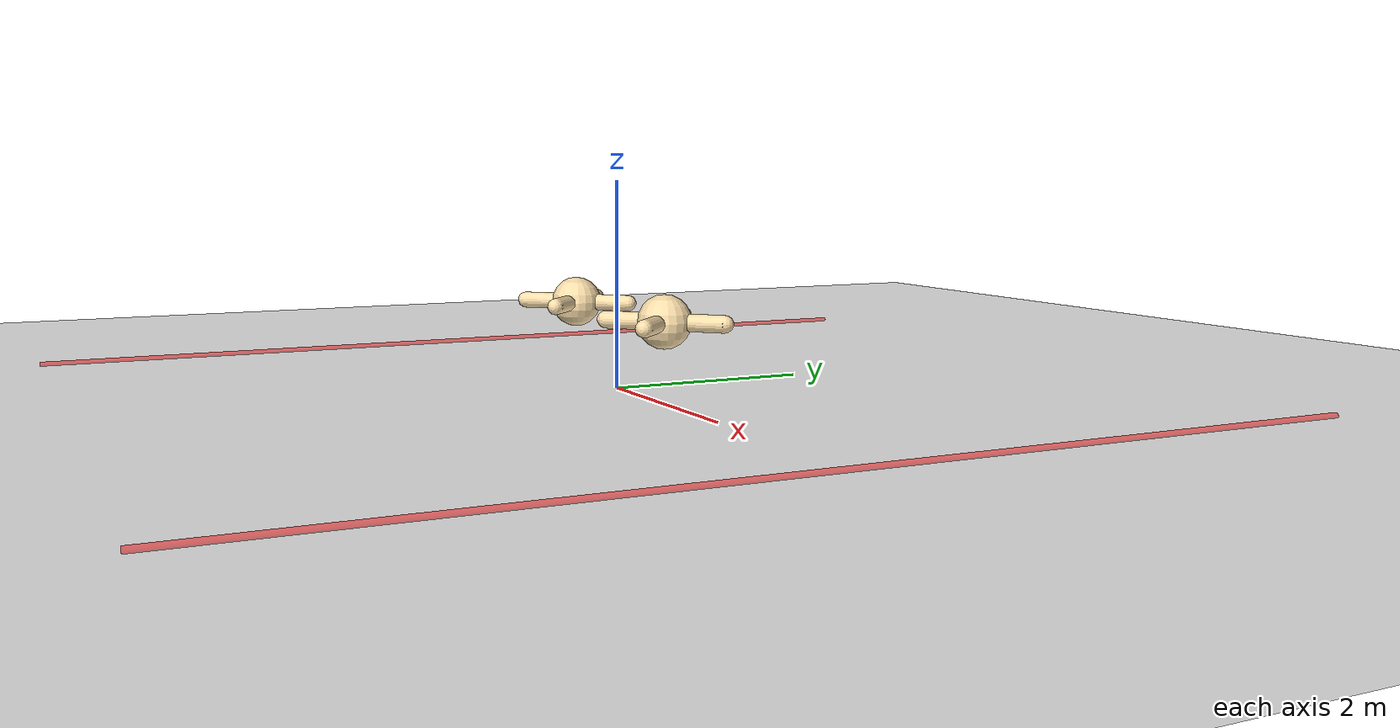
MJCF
<mujoco model="mutiagent_world">
  <compiler angle="degree" coordinate="local" inertiafromgeom="true" />

  <option integrator="RK4" timestep="0.003" solver="PGS" iterations="1000" />

  <default>
    <joint armature="1" damping="1" limited="true" />
  <default class="agent0"><joint armature="1" damping="1" limited="true" />
    <geom conaffinity="0" condim="3" density="5.0" friction="1 0.5 0.5" margin="0.01" rgba="0.98 0.87 0.67 1" material="geom" contype="1" />
  </default><default class="agent1"><joint armature="1" damping="1" limited="true" />
    <geom conaffinity="1" condim="3" density="5.0" friction="1 0.5 0.5" margin="0.01" rgba="0.98 0.87 0.67 1" material="geom" contype="0" />
  </default></default>

  <visual>
    <headlight ambient=".1 .1 .1" diffuse=".6 .6 .6" specular="0.3 0.3 0.3" />
    <map znear=".01" />
    <quality shadowsize="16384" />
  </visual>

  <asset>
    <texture builtin="gradient" height="100" rgb1=".4 .5 .6" rgb2="0 0 0" type="skybox" width="100" />
    <texture builtin="flat" height="1278" mark="cross" markrgb="0 0 0" name="texgeom" random="0.01" rgb1="0.8 0.6 0.4" rgb2="0.8 0.6 0.4" type="cube" width="127" />
    <texture builtin="checker" height="100" name="texplane" rgb1="0 0 0" rgb2="0.8 0.8 0.8" type="2d" width="100" />
    <texture name="MatPlane" type="2d" builtin="checker" rgb1=".5 .5 .5" rgb2=".5 .5 .5" width="300" height="300" mark="edge" markrgb="0.1 0.1 0.1" />
    <material name="MatPlane" texture="MatPlane" texrepeat="2 2" texuniform="true" reflectance=".2" />
    <material name="geom" texture="texgeom" texuniform="true" />
  </asset>

  <worldbody>
    <light cutoff="100" diffuse="1 1 1" dir="-0 0 -1.3" directional="true" exponent="1" pos="0 0 1.3" specular=".1 .1 .1" />
    <geom contype="1" conaffinity="1" friction="1 .1 .1" condim="3" material="MatPlane" name="floor" pos="0 0 0" rgba="1 1 1 1" size="20 20 0.125" type="plane" />
    <geom fromto="4 -5 0  4 +5 0" name="rightgoal" rgba="1 0 0 0.5" size=".03" type="cylinder" />
    <geom fromto="-4 -5 0  -4 +5 0" name="leftgoal" rgba="1 0 0 0.5" size=".03" type="cylinder" />
  <body name="agent0/0" pos="-1 0 0.75" euler="0 0 0">
      <geom pos="0 0 0" size="0.25" type="sphere" class="agent0" name="agent0/anon2355859551" />
      <joint armature="0" damping="0" limited="false" margin="0.01" name="agent0/root" pos="0 0 0" range="-30 30" type="free" />
      <body name="agent0/1" pos="0 0 0">
          <geom fromto="0.0 0.0 0.0 0.4 0.4 0.0" size="0.08" type="capsule" class="agent0" name="agent0/anon4052095259" />
          <joint axis="-1 1 0" name="agent0/1_joint" pos="0.0 0.0 0.0" range="-30 30" type="hinge" />
      </body>
      <body name="agent0/2" pos="0 0 0">
          <geom fromto="0.0 0.0 0.0 -0.4 0.4 0.0" size="0.08" type="capsule" class="agent0" name="agent0/anon4769990318" />
          <joint axis="-1 -1 0" name="agent0/2_joint" pos="0.0 0.0 0.0" range="-30 30" type="hinge" />
      </body>
      <body name="agent0/3" pos="0 0 0">
          <geom fromto="0.0 0.0 0.0 -0.4 -0.4 0.0" size="0.08" type="capsule" class="agent0" name="agent0/anon2075973529" />
          <joint axis="1 -1 0" name="agent0/3_joint" pos="0.0 0.0 0.0" range="-30 30" type="hinge" />
      </body>
      <body name="agent0/4" pos="0 0 0">
          <geom fromto="0.0 0.0 0.0 0.4 -0.4 0.0" size="0.08" type="capsule" class="agent0" name="agent0/anon3098734066" />
          <joint axis="1 1 0" name="agent0/4_joint" pos="0.0 0.0 0.0" range="-30 30" type="hinge" />
      </body>
    </body>

  <body name="agent1/0" pos="1 0 0.75" euler="0 0 180">
      <geom pos="0 0 0" size="0.25" type="sphere" class="agent1" name="agent1/anon4504857663" />
      <joint armature="0" damping="0" limited="false" margin="0.01" name="agent1/root" pos="0 0 0" range="-30 30" type="free" />
      <body name="agent1/1" pos="0 0 0">
          <geom fromto="0.0 0.0 0.0 0.4 0.4 0.0" size="0.08" type="capsule" class="agent1" name="agent1/anon5140083363" />
          <joint axis="-1 1 0" name="agent1/1_joint" pos="0.0 0.0 0.0" range="-30 30" type="hinge" />
      </body>
      <body name="agent1/2" pos="0 0 0">
          <geom fromto="0.0 0.0 0.0 -0.4 0.4 0.0" size="0.08" type="capsule" class="agent1" name="agent1/anon5031723857" />
          <joint axis="-1 -1 0" name="agent1/2_joint" pos="0.0 0.0 0.0" range="-30 30" type="hinge" />
      </body>
      <body name="agent1/3" pos="0 0 0">
          <geom fromto="0.0 0.0 0.0 -0.4 -0.4 0.0" size="0.08" type="capsule" class="agent1" name="agent1/anon1012869891" />
          <joint axis="1 -1 0" name="agent1/3_joint" pos="0.0 0.0 0.0" range="-30 30" type="hinge" />
      </body>
      <body name="agent1/4" pos="0 0 0">
          <geom fromto="0.0 0.0 0.0 0.4 -0.4 0.0" size="0.08" type="capsule" class="agent1" name="agent1/anon1612058358" />
          <joint axis="1 1 0" name="agent1/4_joint" pos="0.0 0.0 0.0" range="-30 30" type="hinge" />
      </body>
    </body>

  </worldbody>
<actuator>
    <motor ctrllimited="true" ctrlrange="-1.0 1.0" joint="agent0/1_joint" gear="150" name="agent0/1_joint" class="agent0" />
    <motor ctrllimited="true" ctrlrange="-1.0 1.0" joint="agent0/2_joint" gear="150" name="agent0/2_joint" class="agent0" />
    <motor ctrllimited="true" ctrlrange="-1.0 1.0" joint="agent0/3_joint" gear="150" name="agent0/3_joint" class="agent0" />
    <motor ctrllimited="true" ctrlrange="-1.0 1.0" joint="agent0/4_joint" gear="150" name="agent0/4_joint" class="agent0" />
  <motor ctrllimited="true" ctrlrange="-1.0 1.0" joint="agent1/1_joint" gear="150" name="agent1/1_joint" class="agent1" />
    <motor ctrllimited="true" ctrlrange="-1.0 1.0" joint="agent1/2_joint" gear="150" name="agent1/2_joint" class="agent1" />
    <motor ctrllimited="true" ctrlrange="-1.0 1.0" joint="agent1/3_joint" gear="150" name="agent1/3_joint" class="agent1" />
    <motor ctrllimited="true" ctrlrange="-1.0 1.0" joint="agent1/4_joint" gear="150" name="agent1/4_joint" class="agent1" />
  </actuator>
  </mujoco>
